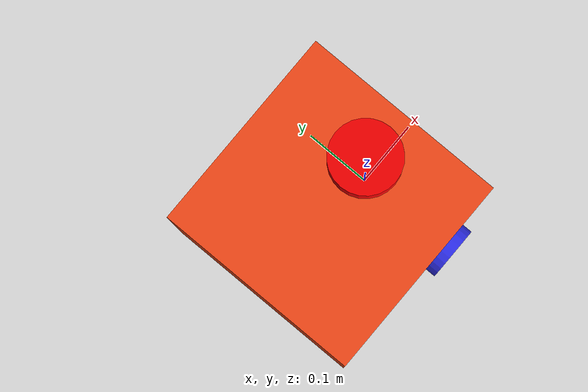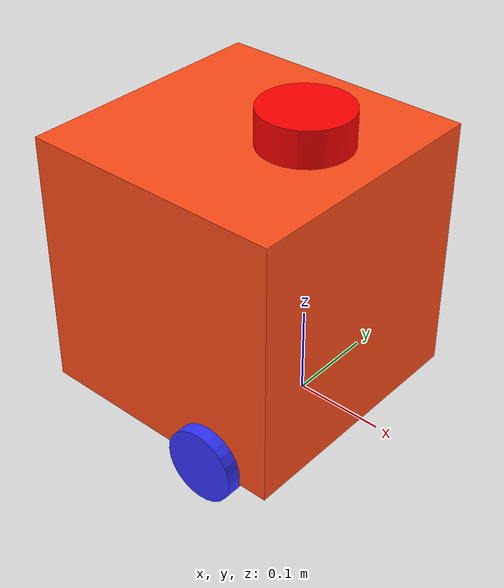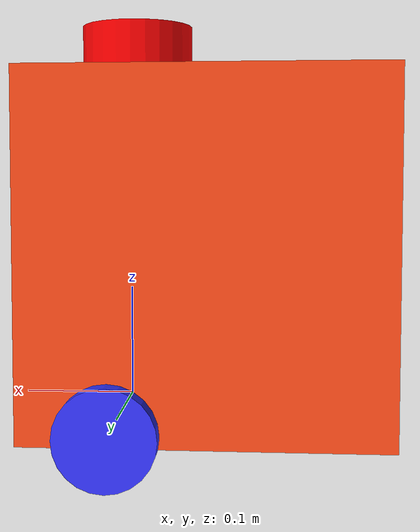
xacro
<?xml version="1.0"?>
<robot xmlns:xacro="http://www.ros.org/wiki/xacro"  name="agni_2">

 <xacro:arg name="use_ros2_control" default="true"/>
 <xacro:arg name="sim_mode" default="false"/>

  <xacro:include filename="/home/robot/dev_ws/src/agni_2/description/robot_core.xacro" />

    <xacro:if value="$(arg use_ros2_control)">
        <xacro:include filename="/home/robot/dev_ws/src/agni_2/description/ros2_control.xacro" />
    </xacro:if>
    <xacro:unless value="$(arg use_ros2_control)">
        <xacro:include filename="/home/robot/dev_ws/src/agni_2/description/gazebo_control.xacro" />
    </xacro:unless>
    <xacro:include filename="lidar.xacro" />

</robot>

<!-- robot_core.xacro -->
<robot xmlns:xacro="http://www.ros.org/wiki/xacro" >

     <xacro:include filename="/home/robot/dev_ws/src/agni_2/description/inertial_macros.xacro"/>

    <xacro:property name="body_length" value="0.3"/>
    <xacro:property name="body_width" value="0.3"/>
    <xacro:property name="body_height" value="0.3"/>
    <xacro:property name="body_mass" value="5"/>
    <xacro:property name="wheel_radius" value="0.0415"/>
    <xacro:property name="wheel_thickness" value="0.035"/>
    <xacro:property name="wheel_mass" value="0.05"/>
    <xacro:property name="wheel_offset_x" value="0.226"/>
    <xacro:property name="wheel_offset_y" value="0.1485"/>
    <xacro:property name="wheel_offset_z" value="0.01"/>
    <xacro:property name="caster_wheel_radius" value="0.02"/>
    <xacro:property name="caster_wheel_mass" value="0.01"/>
    <xacro:property name="caster_wheel_offset_x" value="0.02"/>
    <xacro:property name="caster_wheel_offset_z" value="${wheel_offset_z - wheel_radius + caster_wheel_radius}"/>

  <material name="white">
      <color rgba="1 1 1 1"/>
  </material>

  <material name="orange">
      <color rgba="1 0.3 0.1 1"/>
  </material>

  <material name="blue">
      <color rgba="0.2 0.2 1 1"/>
  </material>

  <material name="black">
      <color rgba="0 0 0 1"/>
  </material>

  <material name="red">
      <color rgba="1 0 0 1"/>
  </material>

<!--/////////////////////////// base link //////////////////////// -->
  <link name="base_link">
     <pose>0 0 0 0 0 -3.14159</pose>
  </link>

<!--/////////////////////////// base footprint link //////////////////////// -->
 <joint name="base_footprint_joint" type="fixed">
    <parent link="base_link"/>
    <child link="base_footprint"/>
    <origin xyz="0.0 0.0 0.0" rpy="0.0 0.0 0.0"/>
  </joint>

  <link name="base_footprint">
  </link>

<!--/////////////////////////// body link //////////////////////// -->

      <joint name="body_joint" type="fixed">
        <parent link="base_link"/>
        <child link="body"/>
        <origin xyz="${-wheel_offset_x} 0 ${-wheel_offset_z}" rpy="0 0 0"/>
    </joint>

    <link name="body">
        <visual>
            <origin xyz="${body_length/2} 0 ${body_height/2}"/>
            <pose xyz="${body_length/2} 0 ${body_height/2}" rz="180.0"/>
            <geometry>
                <box size="${body_length} ${body_width} ${body_height}"/>
            </geometry>
            <material name="orange"/>
        </visual>
        <collision>
            <origin xyz="${body_length/2} 0 ${body_height/2}"/>
            <pose xyz="${body_length/2} 0 ${body_height/2}" rz="180.0"/>
            <geometry>
                <box size="${body_length} ${body_width} ${body_height}"/>
            </geometry>
        </collision>
        <xacro:inertial_box mass="0.5" x="${body_length}" y="${body_width}" z="${body_height}">
            <origin xyz="${body_length/2} 0 ${body_height/2}" rpy="0 0 0"/>
        </xacro:inertial_box>
    </link>

    <gazebo reference="body">
        <material>Gazebo/Blue</material>
    </gazebo>

<!--/////////////////////////// left wheel link //////////////////////// -->
<joint name="left_wheel_joint" type="continuous">
        <parent link="base_link"/>
        <child link="left_wheel"/>
        <origin xyz="0 ${wheel_offset_y} 0" rpy="${-pi/2} 0 0" />
        <axis xyz="0 0 1"/>
    </joint>

    <link name="left_wheel">
        <visual>
            <geometry>
                <cylinder radius="${wheel_radius}" length="${wheel_thickness}"/>
            </geometry>
            <material name="blue"/>
        </visual>
        <collision>
            <geometry>
                <sphere radius="${wheel_radius}"/>
            </geometry>
        </collision>
        <xacro:inertial_cylinder mass="${wheel_mass}" length="${wheel_thickness}" radius="${wheel_radius}">
            <origin xyz="0 0 0" rpy="0 0 0"/>
        </xacro:inertial_cylinder>
    </link>

    <gazebo reference="left_wheel">
        <material>Gazebo/Black</material>
    </gazebo>

 <!--/////////////////////////// right wheel link //////////////////////// -->
  <joint name="right_wheel_joint" type="continuous">
        <parent link="base_link"/>
        <child link="right_wheel"/>
        <origin xyz="0 ${-wheel_offset_y} 0" rpy="${pi/2} 0 0" />
        <axis xyz="0 0 -1"/>
    </joint>

    <link name="right_wheel">
        <visual>
            <geometry>
                <cylinder radius="${wheel_radius}" length="${wheel_thickness}"/>
            </geometry>
            <material name="blue"/>
        </visual>
        <collision>
            <geometry>
                <sphere radius="${wheel_radius}"/>
            </geometry>
        </collision>
        <xacro:inertial_cylinder mass="${wheel_mass}" length="${wheel_thickness}" radius="${wheel_radius}">
            <origin xyz="0 0 0" rpy="0 0 0"/>
        </xacro:inertial_cylinder>
    </link>

    <gazebo reference="right_wheel">
        <material>Gazebo/Black</material>
    </gazebo>

  <!--/////////////////////////// caster wheel link //////////////////////// -->
 <joint name="caster_wheel_joint" type="fixed">
        <parent link="body"/>
        <child link="caster_wheel"/>
        <origin xyz="${caster_wheel_offset_x} 0 ${caster_wheel_offset_z}"/>
    </joint>

    <link name="caster_wheel">
        <visual>
            <geometry>
                <sphere radius="${caster_wheel_radius}"/>
            </geometry>
            <material name="white"/>
        </visual>
        <collision>
            <geometry>
                <sphere radius="${caster_wheel_radius}"/>
            </geometry>
        </collision>
        <xacro:inertial_sphere mass="${caster_wheel_mass}" radius="${caster_wheel_radius}">
            <origin xyz="0 0 0" rpy="0 0 0"/>
        </xacro:inertial_sphere>
    </link>

    <gazebo reference="caster_wheel">
        <material>Gazebo/White</material>
        <mu1 value="0.001"/>
        <mu2 value="0.001"/>
    </gazebo>

</robot>

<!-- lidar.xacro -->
<robot xmlns:xacro="http://www.ros.org/wiki/xacro" >

    <joint name="laser_joint" type="fixed">
        <parent link="body"/>
        <child link="laser_frame"/>
        <origin xyz="0.22 0.0 0.33" rpy="0 0 0"/>
    </joint>

    <link name="laser_frame">
        <visual>
            <geometry>
                <cylinder radius="0.05" length="0.04"/>
            </geometry>
            <material name="red"/>
        </visual>
        <visual>
            <origin xyz="0 0 -0.05"/>
            <geometry>
                <cylinder radius="0.01" length="0.1"/>
            </geometry>
            <material name="red"/>
        </visual>
        <collision>
            <geometry>
                <cylinder radius="0.05" length="0.04"/>
            </geometry>
        </collision>
        <xacro:inertial_cylinder mass="0.1" length="0.04" radius="0.05">
            <origin xyz="0 0 0" rpy="0 0 0"/>
        </xacro:inertial_cylinder>
    </link>

    <gazebo reference="laser_frame">
        <material>Gazebo/Red</material>

        <sensor name="laser" type="ray">
            <pose> 0 0 0 0 0 0 </pose>
            <visualize>true</visualize>
            <update_rate>10</update_rate>
            <ray>
                <scan>
                    <horizontal>
                        <samples>360</samples>
                        <min_angle>-3.14</min_angle>
                        <max_angle>3.14</max_angle>
                    </horizontal>
                </scan>
                <range>
                    <min>0.3</min>
                    <max>12</max>
                </range>
            </ray>
            <plugin name="laser_controller" filename="libgazebo_ros_ray_sensor.so">
                <ros>
                    <argument>~/out:=scan</argument>
                </ros>
                <output_type>sensor_msgs/LaserScan</output_type>
                <frame_name>laser_frame</frame_name>
            </plugin>
        </sensor>
    </gazebo>

</robot>
